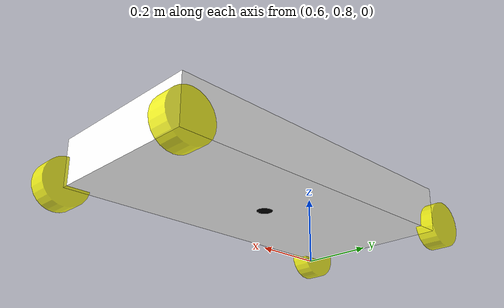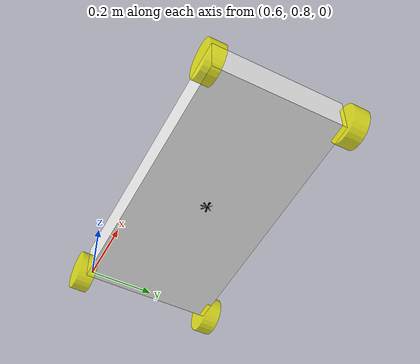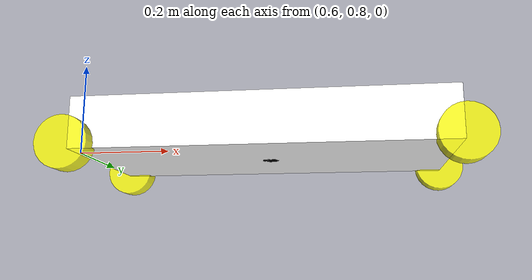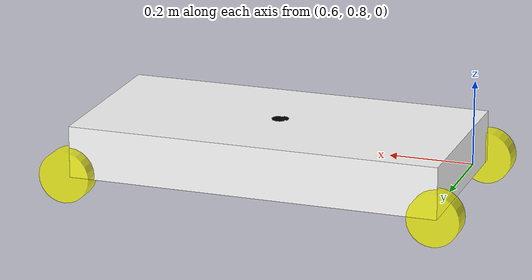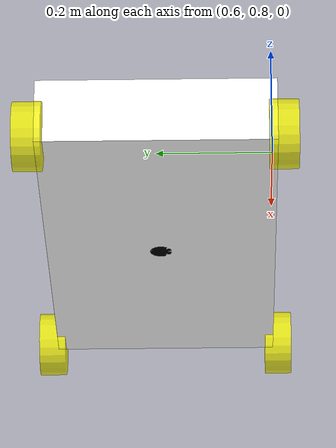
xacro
<?xml version="1.0"?>

<robot name="robot" xmlns:xacro="http://www.ros.org/wiki/xacro">

<!-- 加载xacro文件 -->
<xacro:include filename="$(find my_robot_description)/urdf/common_inertia.xacro"/>
<xacro:include filename="$(find my_robot_description)/urdf/actuator/wheel.urdf.xacro"/>

  <xacro:property name="length_wheel" value="0.05" />
  <xacro:property name="radius_wheel" value="0.06" />
  <xacro:property name="PI" value="3.1415926"/>
  <xacro:property name="dummy_joint_xyz" value="1 1 0.02" />
  <xacro:property name="base_link_size" value="0.42 0.86 0.12" />

  <xacro:macro name="default_inertial" params="mass">
    <inertial>
      <mass value="${mass}" />
      <inertia ixx="0.01" ixy="0.0" ixz="0.0"
                    iyy="0.01" iyz="0.0" izz="0.01" />
    </inertial>
  </xacro:macro>

  <!-- base_link to livox_frame -->
  <xacro:arg name="xyz" default="0.12 0.0 0.175" />
  <xacro:arg name="rpy" default="0 0 0" />

  <link name="dummy"/>

  <link name="base_link">
    <visual>
      <geometry>
        <box size="${base_link_size}"/>

      </geometry>
      <origin rpy="0 0 ${PI/2}" xyz="0 0 0.05"/>
      <material name="white">
        <color rgba="1 1 1 1"/>
      </material>
    </visual>
    <collision>
      <geometry>
        <box size="${base_link_size}"/>
      </geometry>
      <origin rpy="0 0 ${PI/2}" xyz="0 0 0.05"/>
    </collision>
    <xacro:default_inertial mass="8.2"/>
  </link>

  <joint name="dummy_joint" type="fixed">
     <parent link="dummy"/>
     <child link="base_link"/>
     <origin xyz="${dummy_joint_xyz}" rpy="0 0 0"/>
  </joint>

  <!-- 轮子 -->
  <xacro:property name="y" value="0.22" />
  <xacro:property name="x" value="0.43" />

  <xacro:wheel_xacro wheel_name="wheel_1" xyz="${x} ${y} 0" />
  <xacro:wheel_xacro wheel_name="wheel_2" xyz="-${x} ${y} 0" />
  <xacro:wheel_xacro wheel_name="wheel_3" xyz="${x} -${y} 0" />
  <xacro:wheel_xacro wheel_name="wheel_4" xyz="-${x} -${y} 0" />

<!-- 颜色设置 -->
<xacro:include filename="$(find my_robot_description)/urdf/color.xacro" />
  <gazebo reference="base_link">
    <material>Gazebo/$(arg color)</material>
  </gazebo>

  <!-- Drive controller plugin-->
  <!-- https://github.com/ros-simulation/gazebo_ros_pkgs/wiki/ROS-2-Migration:-Planar-Move -->
  <gazebo>
    <plugin name="mecanum_controller" filename="libgazebo_ros_planar_move.so">
      <ros>
        <!-- Add a namespace -->
        <namespace>/</namespace>
        <!-- Remap the default topic -->
        <remapping>cmd_vel:=cmd_vel</remapping>
        <remapping>odom:=odom</remapping>
      </ros>

      <!-- Set control loop update rate -->
      <update_rate>100</update_rate>
      <!-- Set odom publish rate -->
      <publish_rate>10</publish_rate>

      <!-- Set if odom required -->
      <publish_odom>false</publish_odom>
      <publish_odom_tf>false</publish_odom_tf>

      <!-- Frame IDs -->
      <odometry_frame>odom</odometry_frame>
      <robot_base_frame>base_link</robot_base_frame>

      <!-- Set odom covariance -->
      <covariance_x>0.0001</covariance_x>
      <covariance_y>0.0001</covariance_y>
      <covariance_yaw>0.01</covariance_yaw>
    </plugin>
  </gazebo>

 <!--传感器加载  -->
 <xacro:include filename="$(find my_robot_description)/urdf/sensor/imu.urdf.xacro" />
 <xacro:include filename="$(find my_robot_description)/urdf/sensor/laser.urdf.xacro" />
 <xacro:include filename="$(find my_robot_description)/urdf/sensor/laser_single.urdf.xacro" />

 <!-- 插件加载 -->
 <xacro:include filename="$(find my_robot_description)/urdf/plugin/imu_plugin.xacro" />
 <xacro:include filename="$(find my_robot_description)/urdf/plugin/laser_plugin.xacro" />
 <xacro:include filename="$(find my_robot_description)/urdf/plugin/laser_plugin_single.xacro" />

<!-- 放入仿真 -->
<xacro:imu_link xyz="0 0 0.02"/>
<xacro:laser_link  name="laser1" xyz="0 0 0" topic_name="scan1"/>
<xacro:laser_link  name="laser2" xyz="0 0 0.1" topic_name="scan2" min_angle="-1.83" max_angle="1.83"/>
<!-- 加载gazebo插件 -->
<xacro:gazebo_imu_plugin/>

</robot>

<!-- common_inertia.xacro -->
<robot xmlns:xacro="http://ros.org/wiki/xacro">
  <xacro:macro name="box_inertia" params="m w h d">
    <inertial>
      <mass value="${m}"/>
      <inertia ixx="${(m/12) * (h*h + d*d)}" ixy="0.0" ixz="0.0" iyy="${(m/12) * (w*w + d*d)}" iyz="0.0" izz="${(m/12) * (w*w + h*h)}"/>
    </inertial>
  </xacro:macro>

  <xacro:macro name="cylinder_inertia" params="m r h">
    <inertial>
      <mass value="${m}"/>
      <inertia ixx="${(m/12) * (3*r*r + h*h)}" ixy = "0" ixz = "0" iyy="${(m/12) * (3*r*r + h*h)}" iyz = "0" izz="${(m/2) * (r*r)}"/>
    </inertial>
  </xacro:macro>

  <xacro:macro name="sphere_inertia" params="m r">
    <inertial>
      <mass value="${m}"/>
      <inertia ixx="${(2/5) * m * (r*r)}" ixy="0.0" ixz="0.0" iyy="${(2/5) * m * (r*r)}" iyz="0.0" izz="${(2/5) * m * (r*r)}"/>
    </inertial>
  </xacro:macro>

</robot>

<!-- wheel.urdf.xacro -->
<robot xmlns:xacro="http://ros.org/wiki/xacro" >
    <xacro:macro name="wheel_xacro" params="wheel_name xyz">
            <!-- 机器人的IMU部件，惯性测量传感器 -->
        <link name="${wheel_name}_link">
            <visual>
                <!-- 沿着自己几何中心的偏移和旋转量 -->
                <origin xyz="0 0 0" rpy="1.57079 0 0"/>
                <!-- 几何形状 -->
                <geometry>
                    <cylinder length="${length_wheel}" radius="${radius_wheel}"/>
                </geometry>
                <!-- 材质颜色 -->
                <material name="yellow">
                    <color rgba="1.0 1.0 0.0 0.8"/>
                </material>
            </visual>
            <!-- 碰撞描述 -->
            <collision>
                <origin xyz="0 0 0" rpy="1.57079 0 0"/>
                <geometry>
                    <cylinder length="${length_wheel}" radius="${radius_wheel}"/>
                </geometry>
                <material name="yellow">
                    <color rgba="1.0 1.0 0.0 0.8"/>
                </material>
            </collision>
            <!-- 惯性描述 -->
            <mu1>0.5</mu1>
            <mu2>0.5</mu2>
            <xacro:cylinder_inertia m="0.5" r="${radius_wheel}" h="${length_wheel}"/>
        </link>

        <!-- 机器人的关节,用于组成 -->
        <joint name="${wheel_name}_joint" type="continuous">
            <parent link="base_link"/>
            <child link="${wheel_name}_link"/>
            <origin xyz="${xyz}" rpy="0 0 0"/>
            <axis xyz="0 1 0"/>
        </joint>

    </xacro:macro>
</robot>

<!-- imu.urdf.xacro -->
<robot xmlns:xacro="http://ros.org/wiki/xacro" >

    <xacro:macro name="imu_link" params="xyz">
            <!-- 机器人的IMU部件，惯性测量传感器 -->
        <!-- IMU joint -->
  <joint name="imu_joint" type="fixed">
    <axis xyz="0 1 0" />
    <origin xyz="${xyz}" rpy="0 0 0"/>
    <parent link="base_link"/>
    <child link="imu_link"/>
  </joint>

  <!-- IMU -->
  <link name="imu_link">
    <collision>
      <origin xyz="0 0 0" rpy="0 0 0"/>
      <geometry>
        <box size="0.05 0.05 0.05"/>
      </geometry>
    </collision>
    <visual>
      <origin xyz="0 0 0" rpy="0 0 0"/>
      <geometry>
        <box size="0.05 0.05 0.05"/>
      </geometry>
      <material name="green">
        <color rgba="0 1 0 1"/>
      </material>
    </visual>
    <inertial>
      <mass value="1e-2" />
      <origin xyz="0 0 0" rpy="0 0 0"/>
      <inertia ixx="1e-6" ixy="0" ixz="0" iyy="1e-6" iyz="0" izz="1e-6" />
    </inertial>
  </link>

    </xacro:macro>
</robot>

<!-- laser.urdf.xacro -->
<robot xmlns:xacro="http://ros.org/wiki/xacro" >
    <xacro:macro name="laser_link" params="name xyz topic_name min_angle=0 max_angle=2*PI">

            <!-- 雷达 -->
            <link name="${name}_link">
                <visual>
                    <origin xyz="0 0 0" rpy="0 0 0"/>
                    <geometry>
                        <cylinder length="0.02" radius="0.02"/>
                    </geometry>
                    <material name="black">
                        <color rgba="0.0 0.0 0.0 1.0"/>
                    </material>
                </visual>
                <!-- 碰撞描述 -->
                <collision>
                    <origin xyz="0 0 0" rpy="0 0 0"/>
                    <geometry>
                        <cylinder length="0.02" radius="0.02"/>
                    </geometry>
                    <material name="black">
                        <color rgba="0.0 0.0 0.0 1.0"/>
                    </material>
                </collision>
                <!-- 惯性描述 -->
                <xacro:cylinder_inertia m="0.1" r="0.02" h="0.02"/>
            </link>

            <!-- 支撑杆与baselink的关节 -->
            <joint name="${name}_cylinder_joint" type="fixed">
                <parent link="base_link"/>
                <child link="${name}_link"/>
                <origin xyz="${xyz}" rpy="0 0 0"/>
            </joint>

            <gazebo reference="${name}_link">
                <material>Gazebo/Black</material>
            </gazebo>

            <gazebo reference="${name}_cylinder_link">
                <material>Gazebo/Black</material>
            </gazebo>

  <gazebo reference="${name}_link">
            <sensor name="${name}_scan" type="ray">
                <plugin name="laserscan_${name}" filename="libgazebo_ros_ray_sensor.so">
                    <ros>
                        <namespace>/</namespace>
                        <remapping>~/out:=${topic_name}</remapping>
                    </ros>
                    <output_type>sensor_msgs/LaserScan</output_type>
                    <frame_name>${name}_link</frame_name>
                </plugin>
                <always_on>true</always_on>
                <visualize>true</visualize>
                <update_rate>5</update_rate>
                <pose>0 0 0 0 0 0</pose>
                <!-- 激光传感器配置 -->
            <ray>
                <!-- 设置扫描范围 -->
                <scan>
                    <horizontal>
                        <samples>360</samples>
                        <resolution>1.000000</resolution>
                        <min_angle>${min_angle}</min_angle>
                        <max_angle>${max_angle}</max_angle>
                    </horizontal>
                    </scan>
                    <!-- 设置扫描距离 -->
                    <range>
                        <min>0.830000</min>
                        <max>20.0</max>
                        <resolution>0.015000</resolution>
                    </range>
                    <!-- 设置噪声 -->
                    <noise>
                        <type>gaussian</type>
                        <mean>0.0</mean>
                        <stddev>0.01</stddev>
                    </noise>
                </ray>
            </sensor>
        </gazebo>
        </xacro:macro>
</robot>
